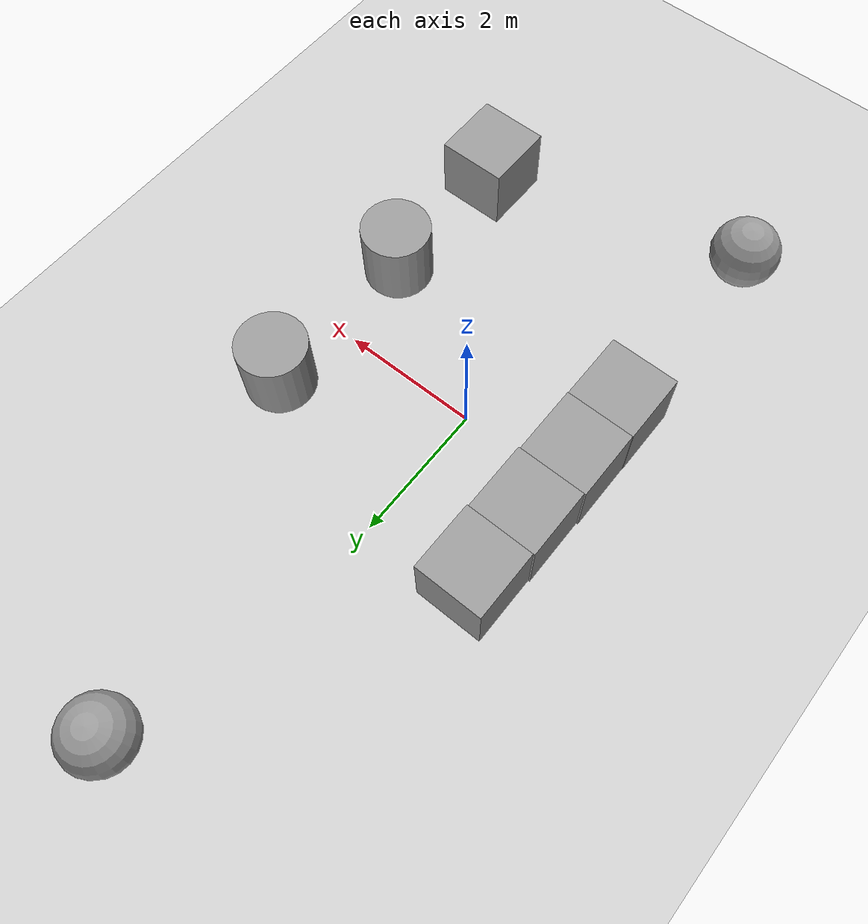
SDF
<sdf version="1.6">
 <world name="default">
  <light name="sun" type="directional">
   <pose>0 0 10 0 -0 0</pose>
   <diffuse>0.8 0.8 0.8 1</diffuse>
   <specular>0.1 0.1 0.1 1</specular>
   <attenuation>
    <range>1000</range>
    <constant>0.9</constant>
    <linear>0.01</linear>
    <quadratic>0.001</quadratic>
   </attenuation>
   <direction>-0.5 0.5 -1</direction>
  </light>
  <model name="ground_plane">
   <static>1</static>
   <link name="link">
    <collision name="collision">
     <geometry><plane><normal>0 0 1</normal><size>100 100</size></plane></geometry>
     <surface><friction><ode><mu>100</mu><mu2>50</mu2></ode></friction></surface>
    </collision>
    <visual name="visual">
     <cast_shadows>0</cast_shadows>
     <geometry><plane><normal>0 0 1</normal><size>100 100</size></plane></geometry>
     <material>
      <script><uri>file://media/materials/scripts/gazebo.material</uri><name>Gazebo/Grey</name></script>
     </material>
    </visual>
   </link>
  </model>
  <gravity>0 0 -9.8</gravity>
  <magnetic_field>6e-06 2.3e-05 -4.2e-05</magnetic_field>
  <atmosphere type="adiabatic"/>
  <physics name="default_physics" default="0" type="ode">
   <max_step_size>0.001</max_step_size>
   <real_time_factor>1</real_time_factor>
   <real_time_update_rate>1000</real_time_update_rate>
  </physics>
  <scene><ambient>0.4 0.4 0.4 1</ambient><background>0.7 0.7 0.7 1</background><shadows>1</shadows></scene>
  <spherical_coordinates>
   <surface_model>EARTH_WGS84</surface_model>
   <latitude_deg>0</latitude_deg>
   <longitude_deg>0</longitude_deg>
   <elevation>0</elevation>
   <heading_deg>0</heading_deg>
  </spherical_coordinates>
  <model name="unit_box_0">
   <pose>-1.5741 -1.22164 0.499995 -1e-05 -0 -0.000741</pose>
   <link name="link">
    <inertial>
     <mass>1</mass>
     <inertia>
      <ixx>0.166667</ixx>
      <ixy>0</ixy>
      <ixz>0</ixz>
      <iyy>0.166667</iyy>
      <iyz>0</iyz>
      <izz>0.166667</izz>
     </inertia>
    </inertial>
    <collision name="collision"><geometry><box><size>1 1 1</size></box></geometry></collision>
    <visual name="visual">
     <geometry><box><size>1 1 1</size></box></geometry>
     <material>
      <script><name>Gazebo/Grey</name><uri>file://media/materials/scripts/gazebo.material</uri></script>
     </material>
    </visual>
   </link>
  </model>
  <model name="unit_box_1">
   <pose>-1.56714 -0.22161 0.499995 -1e-05 -0 -0.000679</pose>
   <link name="link">
    <inertial>
     <mass>1</mass>
     <inertia>
      <ixx>0.166667</ixx>
      <ixy>0</ixy>
      <ixz>0</ixz>
      <iyy>0.166667</iyy>
      <iyz>0</iyz>
      <izz>0.166667</izz>
     </inertia>
    </inertial>
    <collision name="collision"><geometry><box><size>1 1 1</size></box></geometry></collision>
    <visual name="visual">
     <geometry><box><size>1 1 1</size></box></geometry>
     <material>
      <script><name>Gazebo/Grey</name><uri>file://media/materials/scripts/gazebo.material</uri></script>
     </material>
    </visual>
   </link>
  </model>
  <model name="unit_box_2">
   <pose>-1.54462 0.77839 0.499995 1e-05 0 -0.000638</pose>
   <link name="link">
    <inertial>
     <mass>1</mass>
     <inertia>
      <ixx>0.166667</ixx>
      <ixy>0</ixy>
      <ixz>0</ixz>
      <iyy>0.166667</iyy>
      <iyz>0</iyz>
      <izz>0.166667</izz>
     </inertia>
    </inertial>
    <collision name="collision"><geometry><box><size>1 1 1</size></box></geometry></collision>
    <visual name="visual">
     <geometry><box><size>1 1 1</size></box></geometry>
     <material>
      <script><name>Gazebo/Grey</name><uri>file://media/materials/scripts/gazebo.material</uri></script>
     </material>
    </visual>
   </link>
  </model>
  <model name="unit_box_3">
   <pose>-1.52105 1.77838 0.499995 1e-05 -0 -0.000644</pose>
   <link name="link">
    <inertial>
     <mass>1</mass>
     <inertia>
      <ixx>0.166667</ixx>
      <ixy>0</ixy>
      <ixz>0</ixz>
      <iyy>0.166667</iyy>
      <iyz>0</iyz>
      <izz>0.166667</izz>
     </inertia>
    </inertial>
    <collision name="collision"><geometry><box><size>1 1 1</size></box></geometry></collision>
    <visual name="visual">
     <geometry><box><size>1 1 1</size></box></geometry>
     <material>
      <script><name>Gazebo/Grey</name><uri>file://media/materials/scripts/gazebo.material</uri></script>
     </material>
    </visual>
   </link>
  </model>
  <model name="unit_box_4">
   <pose>2.20884 -3.37934 0.499995 0 1e-05 0</pose>
   <link name="link">
    <inertial>
     <mass>1</mass>
     <inertia>
      <ixx>0.166667</ixx>
      <ixy>0</ixy>
      <ixz>0</ixz>
      <iyy>0.166667</iyy>
      <iyz>0</iyz>
      <izz>0.166667</izz>
     </inertia>
    </inertial>
    <collision name="collision"><geometry><box><size>1 1 1</size></box></geometry></collision>
    <visual name="visual">
     <geometry><box><size>1 1 1</size></box></geometry>
     <material>
      <script><name>Gazebo/Grey</name><uri>file://media/materials/scripts/gazebo.material</uri></script>
     </material>
    </visual>
   </link>
  </model>
  <model name="unit_cylinder_0">
   <pose>2.29861 -1.31101 0.499998 3e-06 -4e-06 0</pose>
   <link name="link">
    <inertial>
     <mass>1</mass>
     <inertia><ixx>0.145833</ixx><ixy>0</ixy><ixz>0</ixz><iyy>0.145833</iyy><iyz>0</iyz><izz>0.125</izz></inertia>
    </inertial>
    <collision name="collision">
     <geometry><cylinder><radius>0.5</radius><length>1</length></cylinder></geometry>
    </collision>
    <visual name="visual">
     <geometry><cylinder><radius>0.5</radius><length>1</length></cylinder></geometry>
     <material>
      <script><name>Gazebo/Grey</name><uri>file://media/materials/scripts/gazebo.material</uri></script>
     </material>
    </visual>
   </link>
  </model>
  <model name="unit_cylinder_1">
   <pose>2.3655 1.12597 0.499992 -3e-06 -4e-06 -0</pose>
   <link name="link">
    <inertial>
     <mass>1</mass>
     <inertia><ixx>0.145833</ixx><ixy>0</ixy><ixz>0</ixz><iyy>0.145833</iyy><iyz>0</iyz><izz>0.125</izz></inertia>
    </inertial>
    <collision name="collision">
     <geometry><cylinder><radius>0.5</radius><length>1</length></cylinder></geometry>
    </collision>
    <visual name="visual">
     <geometry><cylinder><radius>0.5</radius><length>1</length></cylinder></geometry>
     <material>
      <script><name>Gazebo/Grey</name><uri>file://media/materials/scripts/gazebo.material</uri></script>
     </material>
    </visual>
   </link>
  </model>
  <model name="unit_sphere_0">
   <pose>0.620803 5.93183 0.5 0 -0 0</pose>
   <link name="link">
    <inertial>
     <mass>1</mass>
     <inertia><ixx>0.1</ixx><ixy>0</ixy><ixz>0</ixz><iyy>0.1</iyy><iyz>0</iyz><izz>0.1</izz></inertia>
    </inertial>
    <collision name="collision"><geometry><sphere><radius>0.5</radius></sphere></geometry></collision>
    <visual name="visual">
     <geometry><sphere><radius>0.5</radius></sphere></geometry>
     <material>
      <script><name>Gazebo/Grey</name><uri>file://media/materials/scripts/gazebo.material</uri></script>
     </material>
    </visual>
   </link>
  </model>
  <model name="unit_sphere_1">
   <pose>-1.58475 -4.36734 0.5 0 -0 0</pose>
   <link name="link">
    <inertial>
     <mass>1</mass>
     <inertia><ixx>0.1</ixx><ixy>0</ixy><ixz>0</ixz><iyy>0.1</iyy><iyz>0</iyz><izz>0.1</izz></inertia>
    </inertial>
    <collision name="collision"><geometry><sphere><radius>0.5</radius></sphere></geometry></collision>
    <visual name="visual">
     <geometry><sphere><radius>0.5</radius></sphere></geometry>
     <material>
      <script><name>Gazebo/Grey</name><uri>file://media/materials/scripts/gazebo.material</uri></script>
     </material>
    </visual>
   </link>
  </model>
 </world>
</sdf>
